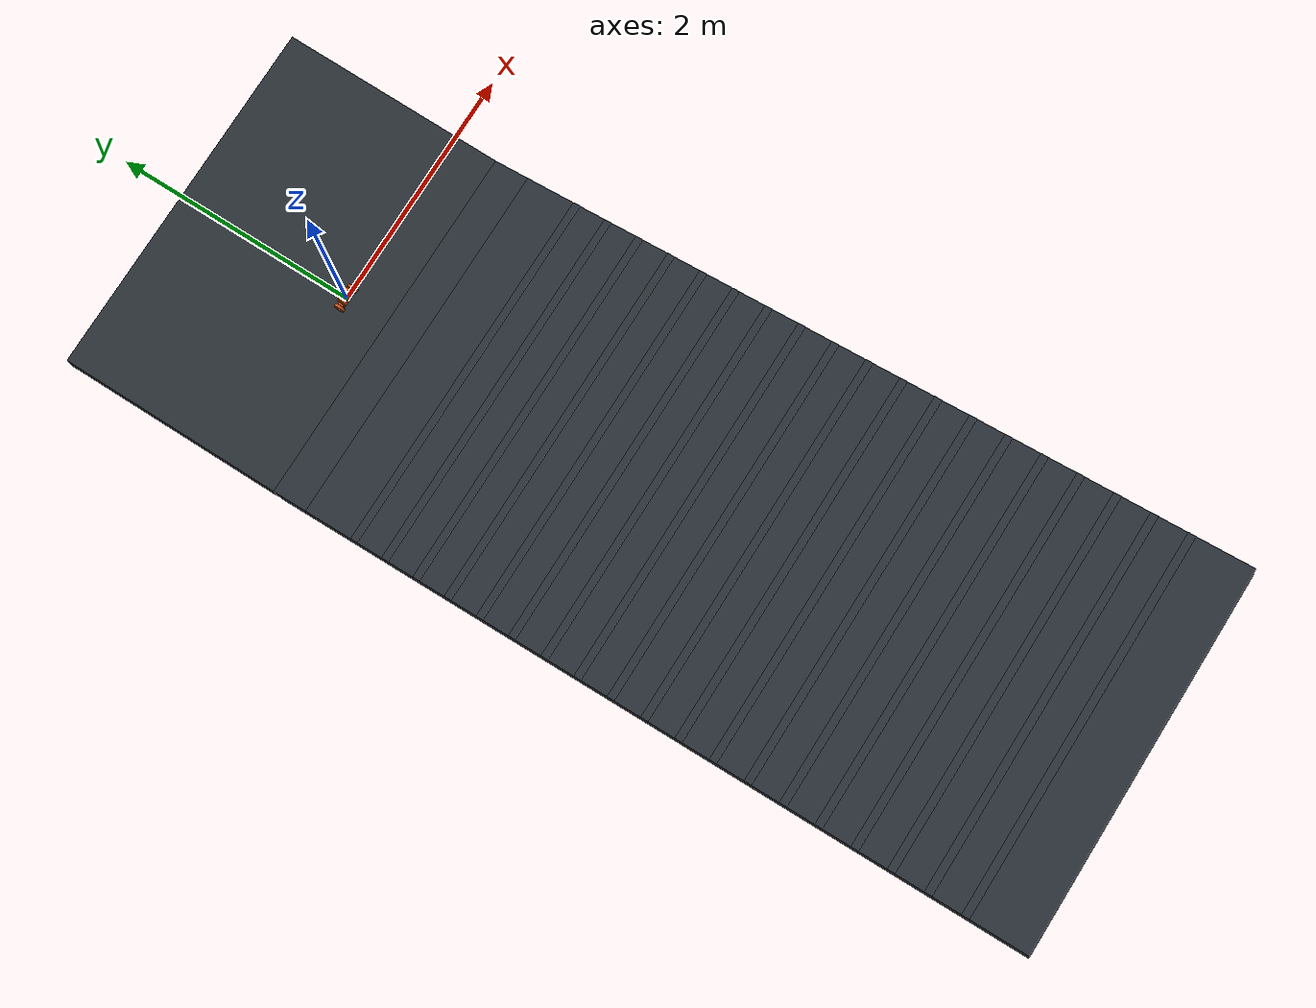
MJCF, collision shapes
<mujoco model="Stage4B rtrain_048_p12p0">
  <compiler angle="radian" meshdir="../../../../assets/upstream_local" />
  <option timestep="0.001" integrator="implicitfast" gravity="0 0 -9.81" />
  <statistic center="0 0 0.05" extent="0.28" />
  <default>
    <default class="visual">
      <geom contype="0" conaffinity="0" group="2" />
    </default>
    <default class="collision">
      <geom group="3" rgba="0.85 0.35 0.12 0.25" solref="0.005 1" solimp="0.9 0.95 0.001" />
    </default>
  </default>
  <asset>
    <texture name="ground_tex" type="2d" builtin="checker" rgb1="0.22 0.25 0.28" rgb2="0.12 0.14 0.16" width="256" height="256" />
    <material name="ground_mat" texture="ground_tex" texrepeat="4 4" reflectance="0.15" />
    <mesh name="main_frame_mesh" file="main_frame.stl" scale="0.001 0.001 0.001" />
    <mesh name="wheel_base_mesh" file="wheel_base.stl" scale="0.001 0.001 0.001" />
    <mesh name="cover_mesh" file="cover.stl" scale="0.001 0.001 0.001" />
    <mesh name="motor_left_mesh" file="motor_left.stl" scale="0.001 0.001 0.001" />
    <mesh name="motor_right_mesh" file="motor_right.stl" scale="0.001 0.001 0.001" />
    <mesh name="mc33926_mesh" file="mc33926.stl" scale="0.001 0.001 0.001" />
    <mesh name="wheel_mesh" file="wheel.stl" scale="0.001 0.001 0.001" />
    <mesh name="adapter_left_mesh" file="adapter_left.stl" scale="0.001 0.001 0.001" />
    <mesh name="adapter_right_mesh" file="adapter_right.stl" scale="0.001 0.001 0.001" />
  </asset>
  <worldbody>
    <light pos="0 -0.5 0.8" dir="0 0.6 -1" diffuse="0.8 0.8 0.8" />
    <geom name="terrain_flat" type="box" pos="0 0.575 -0.1" size="1.5 0.925 0.1" material="ground_mat" friction="0.8736642 0.005 0.0001" condim="3" />
    <geom name="terrain_transition" type="box" pos="0 -0.517513309192 -0.0666280064507" euler="-0.209439510239 0 0" size="1.5 0.15 0.1" material="ground_mat" friction="0.8736642 0.005 0.0001" condim="3" />
    <geom name="terrain_constant_grade" type="box" pos="0 -3.5986782515 0.588293819625" euler="-0.209439510239 0 0" size="1.5 3 0.1" material="ground_mat" friction="0.8736642 0.005 0.0001" condim="3" />
    <geom name="terrain_rough_00" type="box" pos="0 -1.08298072725 0.158897559481" euler="-0.209439510239 0 0" size="1.5 0.0299805028488 0.00303000423026" material="ground_mat" friction="0.8736642 0.005 0.0001" condim="3" />
    <geom name="terrain_rough_01" type="box" pos="0 -1.35892147809 0.217550576706" euler="-0.209439510239 0 0" size="1.5 0.0299805028488 0.00303000423026" material="ground_mat" friction="0.8736642 0.005 0.0001" condim="3" />
    <geom name="terrain_rough_02" type="box" pos="0 -1.63486222894 0.27620359393" euler="-0.209439510239 0 0" size="1.5 0.0299805028488 0.00303000423026" material="ground_mat" friction="0.8736642 0.005 0.0001" condim="3" />
    <geom name="terrain_rough_03" type="box" pos="0 -1.91080297979 0.334856611155" euler="-0.209439510239 0 0" size="1.5 0.0299805028488 0.00303000423026" material="ground_mat" friction="0.8736642 0.005 0.0001" condim="3" />
    <geom name="terrain_rough_04" type="box" pos="0 -2.18674373063 0.393509628379" euler="-0.209439510239 0 0" size="1.5 0.0299805028488 0.00303000423026" material="ground_mat" friction="0.8736642 0.005 0.0001" condim="3" />
    <geom name="terrain_rough_05" type="box" pos="0 -2.46268448148 0.452162645604" euler="-0.209439510239 0 0" size="1.5 0.0299805028488 0.00303000423026" material="ground_mat" friction="0.8736642 0.005 0.0001" condim="3" />
    <geom name="terrain_rough_06" type="box" pos="0 -2.73862523232 0.510815662828" euler="-0.209439510239 0 0" size="1.5 0.0299805028488 0.00303000423026" material="ground_mat" friction="0.8736642 0.005 0.0001" condim="3" />
    <geom name="terrain_rough_07" type="box" pos="0 -3.01456598317 0.569468680053" euler="-0.209439510239 0 0" size="1.5 0.0299805028488 0.00303000423026" material="ground_mat" friction="0.8736642 0.005 0.0001" condim="3" />
    <geom name="terrain_rough_08" type="box" pos="0 -3.29050673402 0.628121697277" euler="-0.209439510239 0 0" size="1.5 0.0299805028488 0.00303000423026" material="ground_mat" friction="0.8736642 0.005 0.0001" condim="3" />
    <geom name="terrain_rough_09" type="box" pos="0 -3.56644748486 0.686774714502" euler="-0.209439510239 0 0" size="1.5 0.0299805028488 0.00303000423026" material="ground_mat" friction="0.8736642 0.005 0.0001" condim="3" />
    <geom name="terrain_rough_10" type="box" pos="0 -3.84238823571 0.745427731726" euler="-0.209439510239 0 0" size="1.5 0.0299805028488 0.00303000423026" material="ground_mat" friction="0.8736642 0.005 0.0001" condim="3" />
    <geom name="terrain_rough_11" type="box" pos="0 -4.11832898656 0.804080748951" euler="-0.209439510239 0 0" size="1.5 0.0299805028488 0.00303000423026" material="ground_mat" friction="0.8736642 0.005 0.0001" condim="3" />
    <geom name="terrain_rough_12" type="box" pos="0 -4.3942697374 0.862733766175" euler="-0.209439510239 0 0" size="1.5 0.0299805028488 0.00303000423026" material="ground_mat" friction="0.8736642 0.005 0.0001" condim="3" />
    <geom name="terrain_rough_13" type="box" pos="0 -4.67021048825 0.9213867834" euler="-0.209439510239 0 0" size="1.5 0.0299805028488 0.00303000423026" material="ground_mat" friction="0.8736642 0.005 0.0001" condim="3" />
    <geom name="terrain_rough_14" type="box" pos="0 -4.94615123909 0.980039800624" euler="-0.209439510239 0 0" size="1.5 0.0299805028488 0.00303000423026" material="ground_mat" friction="0.8736642 0.005 0.0001" condim="3" />
    <geom name="terrain_rough_15" type="box" pos="0 -5.22209198994 1.03869281785" euler="-0.209439510239 0 0" size="1.5 0.0299805028488 0.00303000423026" material="ground_mat" friction="0.8736642 0.005 0.0001" condim="3" />
    <geom name="terrain_rough_16" type="box" pos="0 -5.49803274079 1.09734583507" euler="-0.209439510239 0 0" size="1.5 0.0299805028488 0.00303000423026" material="ground_mat" friction="0.8736642 0.005 0.0001" condim="3" />
    <geom name="terrain_rough_17" type="box" pos="0 -5.77397349163 1.1559988523" euler="-0.209439510239 0 0" size="1.5 0.0299805028488 0.00303000423026" material="ground_mat" friction="0.8736642 0.005 0.0001" condim="3" />
    <geom name="terrain_rough_18" type="box" pos="0 -6.04991424248 1.21465186952" euler="-0.209439510239 0 0" size="1.5 0.0299805028488 0.00303000423026" material="ground_mat" friction="0.8736642 0.005 0.0001" condim="3" />
    <body name="chassis" pos="0 0 0.043">
      <freejoint name="root" />
      <inertial pos="0.0001592717873 -0.001394466535 0.03368627387" mass="0.8173706489" fullinertia="0.0009508052638 0.001636345835 0.0009938057434 -1.163464906e-07 -4.840496598e-06 3.454944565e-05" />
      <geom name="main_frame_visual" class="visual" type="mesh" mesh="main_frame_mesh" rgba="0.12 0.42 0.72 1" />
      <geom name="wheel_base_visual" class="visual" type="mesh" mesh="wheel_base_mesh" rgba="0.95 0.50 0.10 1" />
      <geom name="cover_visual" class="visual" type="mesh" mesh="cover_mesh" rgba="0.18 0.72 0.32 0.72" />
      <geom name="motor_left_visual" class="visual" type="mesh" mesh="motor_left_mesh" rgba="0.45 0.47 0.50 1" />
      <geom name="motor_right_visual" class="visual" type="mesh" mesh="motor_right_mesh" rgba="0.45 0.47 0.50 1" />
      <geom name="mc33926_visual" class="visual" type="mesh" mesh="mc33926_mesh" rgba="0.08 0.36 0.18 1" />
      <geom name="battery_1_visual" class="visual" type="box" pos="0 -0.012 0.038" size="0.035 0.007 0.025" rgba="0.15 0.25 0.75 1" />
      <geom name="battery_2_visual" class="visual" type="box" pos="0 0.012 0.038" size="0.035 0.007 0.025" rgba="0.15 0.25 0.75 1" />
      <geom name="electronics_lump_visual" class="visual" type="box" pos="0 -0.024 0.067" size="0.035 0.006 0.0425" rgba="0.10 0.42 0.20 0.65" />
      <geom name="wheel_base_collision" class="collision" type="box" pos="0 0.0005 0.0042" size="0.074 0.0201 0.0198" />
      <geom name="lower_chassis_collision" class="collision" type="box" pos="0.001 -0.0015 0.038" size="0.0595 0.0325 0.038" />
      <geom name="upper_chassis_collision" class="collision" type="capsule" fromto="-0.024 -0.0015 0.096 0.026 -0.0015 0.096" size="0.033" />
      <site name="imu_site" type="box" pos="0 0 0.020" quat="1 0 0 0" size="0.004 0.003 0.001" rgba="1 0.15 0.05 1" />
      <body name="left_wheel" pos="-0.0885 0 0">
        <joint name="left_wheel_hinge" type="hinge" axis="1 0 0" damping="0.002" frictionloss="0.002" />
        <inertial pos="0.001407549168 -2.310217342e-08 4.024972882e-05" mass="0.1051" fullinertia="8.559060347e-05 4.760138372e-05 4.763051958e-05 2.677568832e-11 -3.525425309e-08 -1.463149106e-11" />
        <geom name="left_wheel_visual" class="visual" type="mesh" mesh="wheel_mesh" rgba="0.04 0.05 0.06 1" />
        <geom name="left_adapter_visual" class="visual" type="mesh" mesh="adapter_left_mesh" rgba="0.12 0.48 0.82 1" />
        <geom name="left_wheel_collision" class="collision" type="cylinder" size="0.042 0.012" quat="0.7071067812 0 0.7071067812 0" friction="0.8736642 0.005 0.0001" />
      </body>
      <body name="right_wheel" pos="0.0885 0 0">
        <joint name="right_wheel_hinge" type="hinge" axis="1 0 0" damping="0.002" frictionloss="0.002" />
        <inertial pos="-0.001407437868 -2.310217342e-08 -4.019113045e-05" mass="0.1051" fullinertia="8.559060397e-05 4.760141714e-05 4.763055251e-05 -2.601653908e-11 -3.526339188e-08 1.57007511e-11" />
        <geom name="right_wheel_visual" class="visual" type="mesh" mesh="wheel_mesh" rgba="0.04 0.05 0.06 1" />
        <geom name="right_adapter_visual" class="visual" type="mesh" mesh="adapter_right_mesh" rgba="0.12 0.48 0.82 1" />
        <geom name="right_wheel_collision" class="collision" type="cylinder" size="0.042 0.012" quat="0.7071067812 0 0.7071067812 0" friction="0.8736642 0.005 0.0001" />
      </body>
    </body>
  </worldbody>
  <actuator>
    <motor name="left_wheel_torque" joint="left_wheel_hinge" gear="1" ctrllimited="true" ctrlrange="-0.63 0.63" forcelimited="true" forcerange="-0.63 0.63" />
    <motor name="right_wheel_torque" joint="right_wheel_hinge" gear="1" ctrllimited="true" ctrlrange="-0.63 0.63" forcelimited="true" forcerange="-0.63 0.63" />
  </actuator>
  <sensor>
    <accelerometer name="imu_accelerometer" site="imu_site" />
    <gyro name="imu_gyro" site="imu_site" />
    <jointpos name="left_wheel_angle" joint="left_wheel_hinge" />
    <jointpos name="right_wheel_angle" joint="right_wheel_hinge" />
  </sensor>
  <keyframe>
    <key name="upright" qpos="0 0 0.043 1 0 0 0 0 0" />
  </keyframe>
</mujoco>
